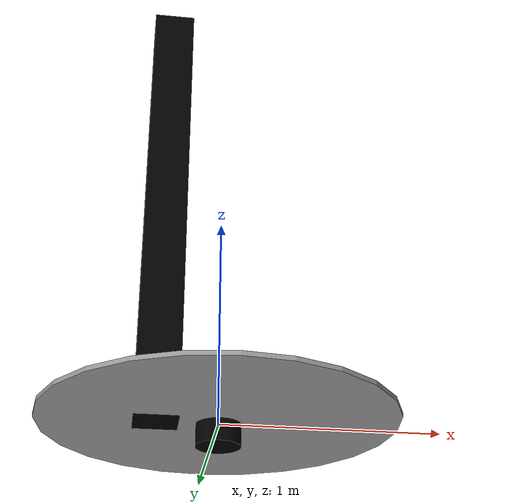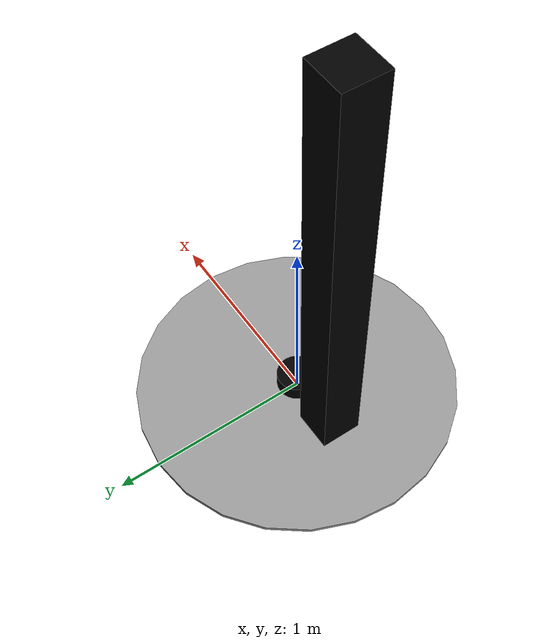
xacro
<?xml version="1.0"?>
<robot name='double_pendulum_with_base'>

  <material name="black">
      <color rgba="0 0 0 1"/>
  </material>

  <link name='base_link'>

    <inertial>
      <mass value="100"/>
      <inertia ixx="1.0" ixy="0.0" ixz="0.0" iyy="1.0" iyz="0.0" izz="1.0"/>
    </inertial>

    <visual name='vis_plate_on_ground'>
      <origin xyz="0 0 0.01" rpy="0 0.0 0"/>
      <geometry>
          <cylinder radius="0.8" length="0.02" />
      </geometry>
      <material uri="file://media/materials/scripts/gazebo.material" name="Gazebo/Grey"/>
    </visual>

    <visual name='vis_pole'>
      <origin xyz="-0.275 0 1.1" rpy="0 0.0 0"/>
      <geometry>
        <box size="0.2 0.2 2.2">
        </box>
      </geometry>
      <material name="black"/>
    </visual>

    <collision name='col_plate_on_ground'>
      <origin xyz="0 0 0.01" rpy="0 0.0 0"/>
      <geometry>
      <cylinder radius="0.8" length="0.02" />
      </geometry>
      <max_contacts>10</max_contacts>
      <surface>
        <contact>
          <ode/>
        </contact>
        <bounce/>
        <friction>
          <torsional>
            <ode/>
          </torsional>
          <ode/>
        </friction>
      </surface>
    </collision>

    <collision name='col_pole'>
      <origin xyz="-0.275 0 1.1" rpy="0 0.0 0"/>
      <geometry>
          <box size="0.2 0.2 2.2"/>
      </geometry>
      <max_contacts>10</max_contacts>
      <surface>
        <contact>
          <ode/>
        </contact>
        <bounce/>
        <friction>
          <torsional>
            <ode/>
          </torsional>
          <ode/>
        </friction>
      </surface>
    </collision>

    <self_collide>0</self_collide>
    <kinematic>0</kinematic>
    <gravity>1</gravity>

  </link>

  <link name='upper_link'>

    <inertial>
      <mass value="1"/>
      <inertia ixx="1.0" ixy="0.0" ixz="0.0" iyy="1.0" iyz="0.0" izz="1.0"/>
    </inertial>

    <visual name='vis_upper_joint'>
      <origin xyz="0 0 0.01" rpy="0 0.0 0"/>
      <geometry>
          <cylinder radius="0.8" length="0.02" />
      </geometry>
      <material name="black"/>
    </visual>

    <visual name='vis_lower_joint'>
      <geometry>
          <cylinder radius="0.1" length="0.2" />
      </geometry>
      <material name="black"/>
    </visual>

    <self_collide>0</self_collide>
    <kinematic>0</kinematic>
    <gravity>1</gravity>
  </link>

  <joint name='upper_joint' type='revolute'>
    <parent link="base_link"/>
    <child link="upper_link"/>
    <axis xyz="1 0 0"/>
      <limit lower="-1e+16" upper="1e+16" effort="1000.0" velocity="1000"/>
  </joint>

</robot>
